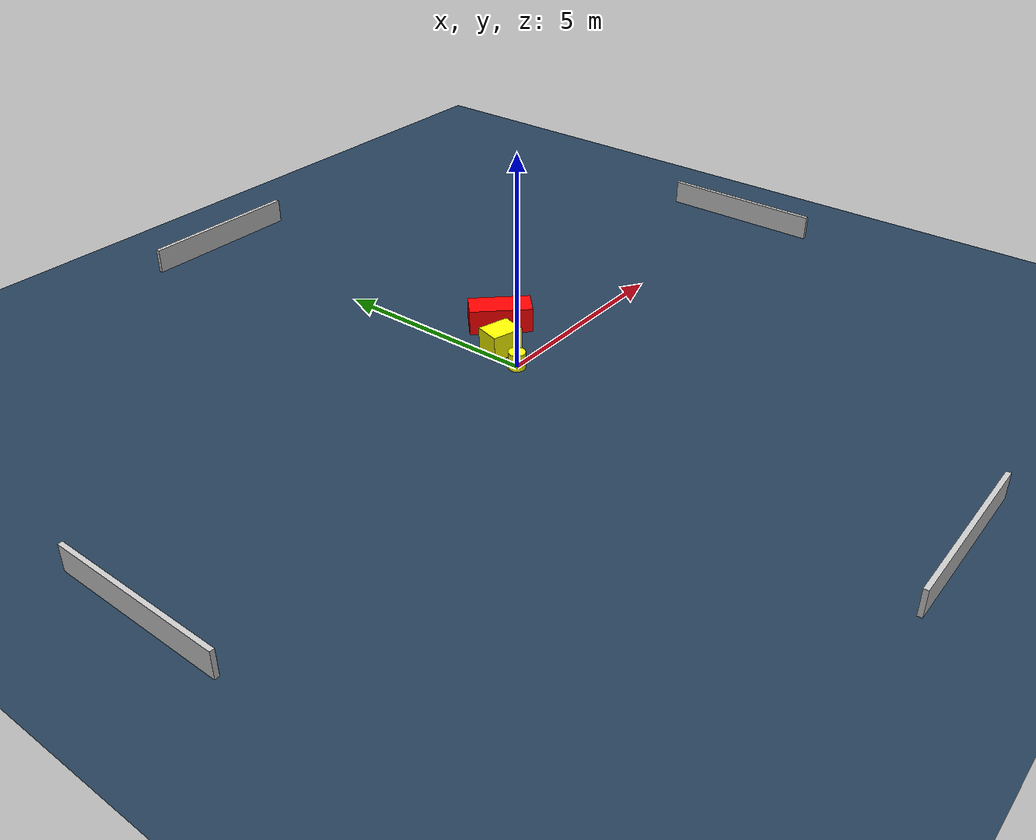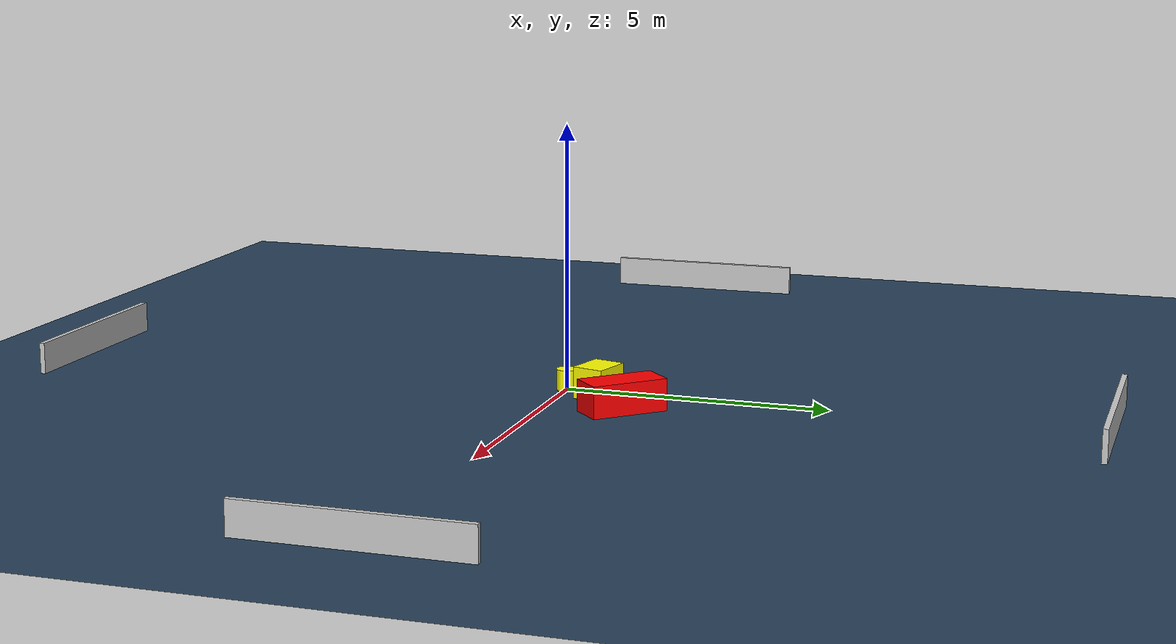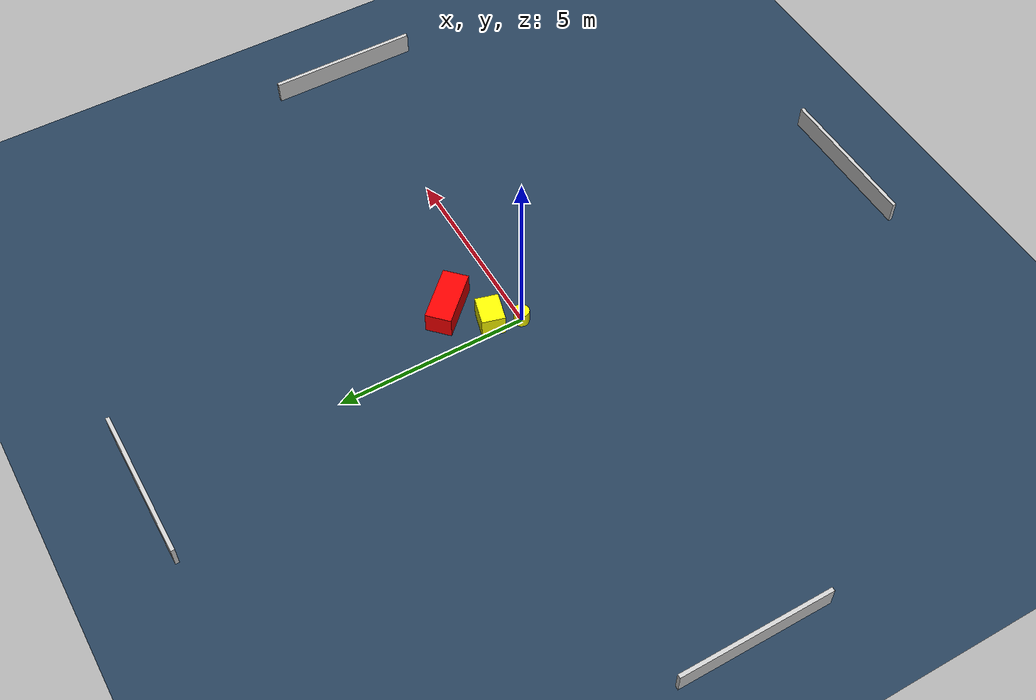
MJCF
<?xml version="1.0" ?>
<mujoco model="generated_environment">
  <option timestep="0.01" integrator="RK4" cone="elliptic"/>
  <default>
    <geom density="1"/>
  </default>
  <asset>
    <texture builtin="gradient" height="3072" name="skybox" rgb1="0.3 0.5 0.7" rgb2="0 0 0" type="skybox" width="512"/>
    <texture builtin="checker" height="300" name="groundplane" rgb1="0.2 0.3 0.4" rgb2="0.1 0.2 0.3" type="2d" width="300"/>
    <material name="groundplane" reflectance="0.2" texrepeat="5 5" texture="groundplane"/>
  </asset>
  <worldbody>
    <light dir="0 0 -1" directional="true" pos="0 0 1.5"/>
    <geom condim="3" friction="0.5 0.005 0.001" material="groundplane" name="floor" pos="0 0 0" size="0 0 0.05" type="plane"/>
    <body name="walls">
      <geom name="wall_1" condim="4" pos="-10.0 0.0 0.3" rgba="0.800000011920929 0.800000011920929 0.800000011920929 1.0" size="0.05 2.0 0.3" type="box"/>
      <geom name="wall_2" condim="4" pos="10.0 0.0 0.3" rgba="0.800000011920929 0.800000011920929 0.800000011920929 1.0" size="0.05 2.0 0.3" type="box"/>
      <geom name="wall_3" condim="4" pos="0.0 -10.0 0.3" rgba="0.800000011920929 0.800000011920929 0.800000011920929 1.0" size="2.0 0.05 0.3" type="box"/>
      <geom name="wall_4" condim="4" pos="0.0 10.0 0.3" rgba="0.800000011920929 0.800000011920929 0.800000011920929 1.0" size="2.0 0.05 0.3" type="box"/>
    </body>
    <body name="robot">
      <joint name="joint_x" type="slide" pos="0 0 0" axis="1 0 0"/>
      <joint name="joint_y" type="slide" pos="0 0 0" axis="0 1 0"/>
      <geom name="robot" type="cylinder" pos="0.0 0.0 0.2" size="0.2 0.2 0.0" mass="5.0" friction="1.0 0.005 0.0001" condim="4" rgba="1.0 1.0 0.0 1.0"/>
    </body>
    <body name="obstacle_1_movable">
      <geom name="obstacle_1_movable" condim="4" pos="0.31571230897328956 0.7135211370141802 0.3" euler="0 0 164.62124213119233" friction="0.0 0.005 0.001" rgba="1.0 1.0 0.0 1.0" size="0.38296189834118977 0.30207358447427257 0.3" type="box" mass="0.1"/>
      <joint type="free"/>
    </body>
    <body name="obstacle_2_static">
      <geom name="obstacle_2_static" condim="4" pos="1.1956671811425232 1.4397224399818969 0.3" euler="0 0 133.85923863477737" friction="0.0 0.005 0.001" rgba="1.0 0.0 0.0 1.0" size="0.735006076693262 0.33768719475503717 0.3" type="box"/>
    </body>
  </worldbody>
  <actuator>
    <motor name="actuator_x" joint="joint_x" gear="1" ctrlrange="-1 1"/>
    <motor name="actuator_y" joint="joint_y" gear="1" ctrlrange="-1 1"/>
  </actuator>
</mujoco>
